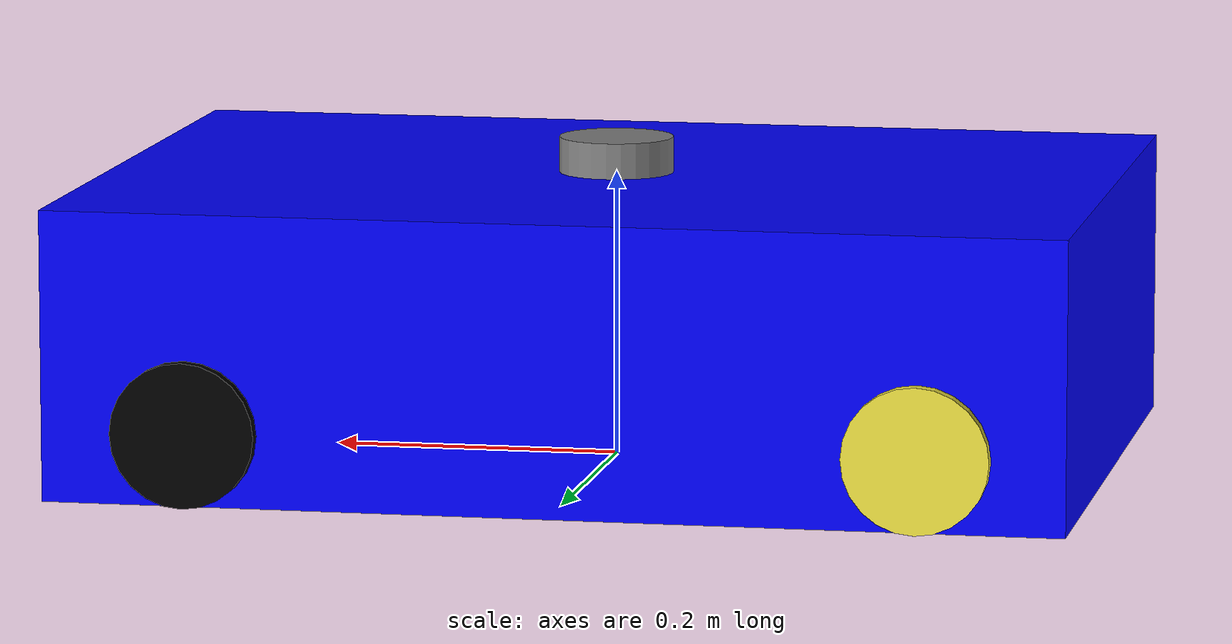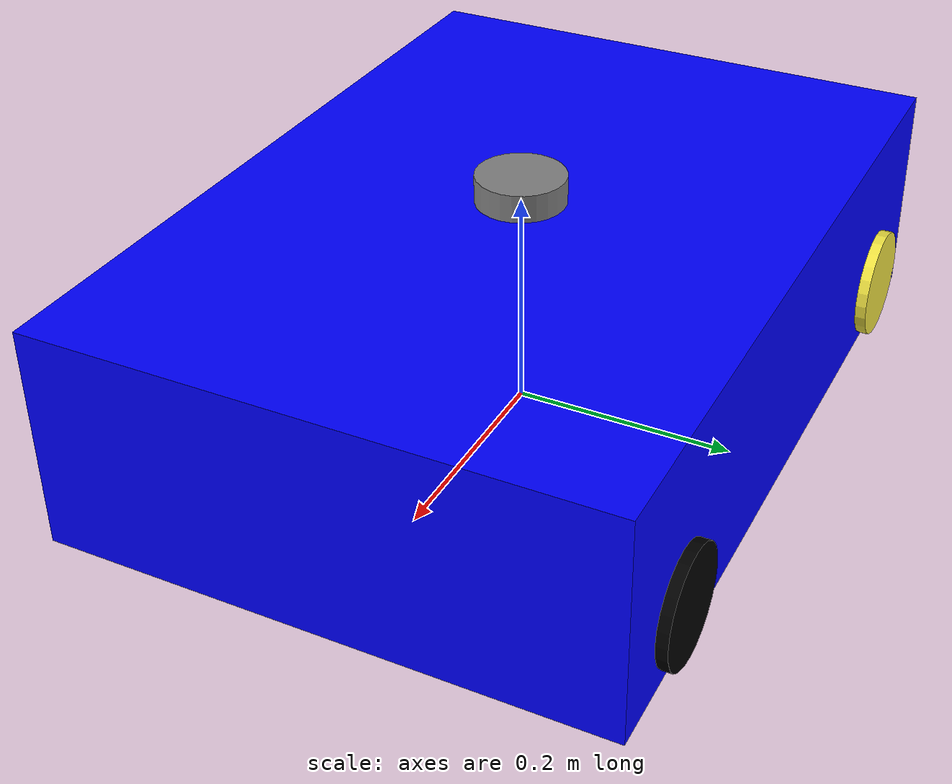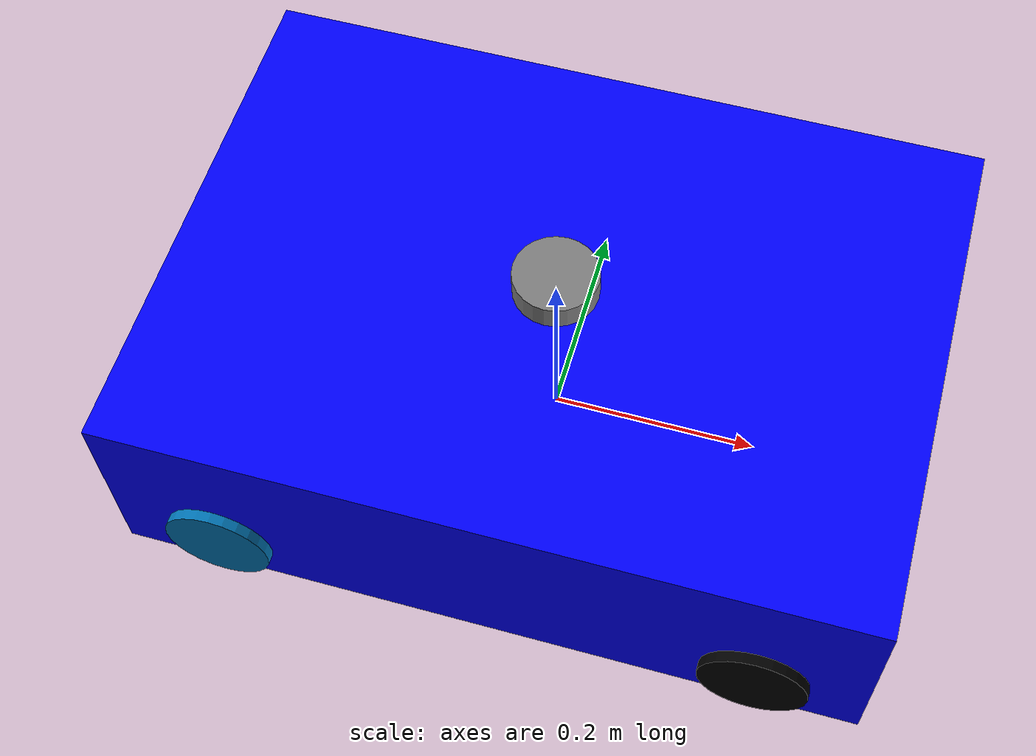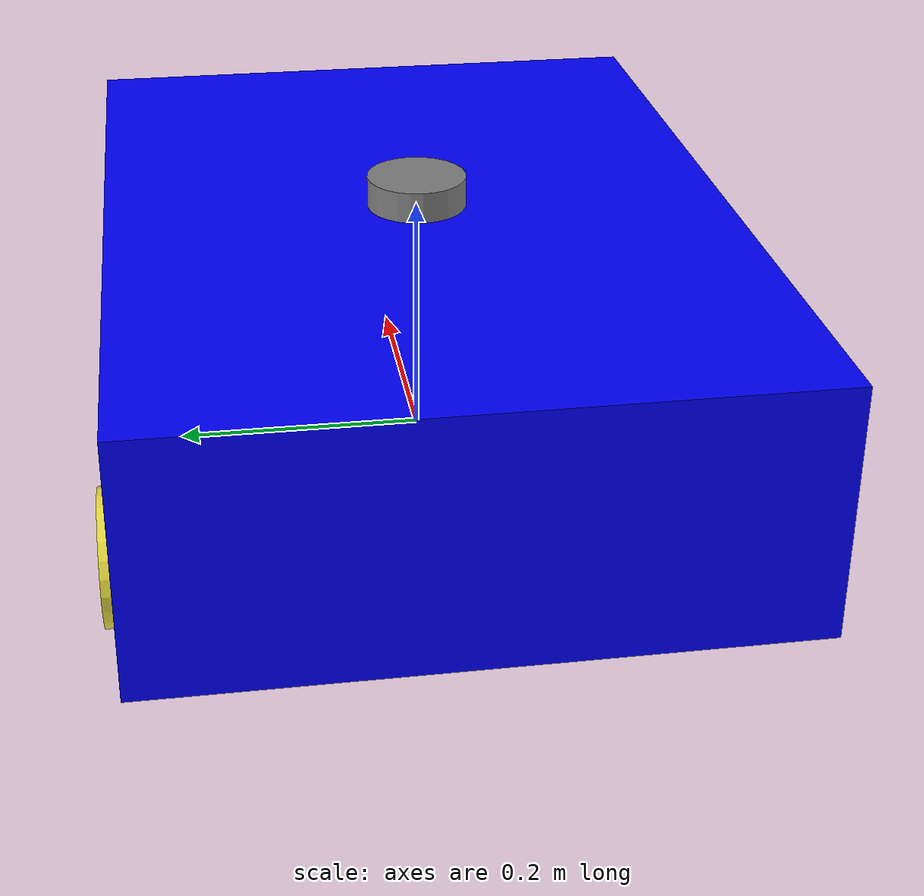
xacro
<?xml version="1.0"?>
<robot name="alina_bot" xmlns:xacro="http://www.ros.org/wiki/xacro">

  <!-- Base Link -->
  <link name="base_link">
    <visual>
      <geometry>
        <box size="0.7 0.5 0.2"/>
      </geometry>
      <origin xyz="0 0 0.1"/>
      <material name="blue">
        <color rgba="0 0 1 1"/>
      </material>
    </visual>
  </link>

  <!-- Wheels (simplified, fixed to base for now) -->
  <link name="left_wheel">
    <visual>
      <geometry>
        <cylinder radius="0.05" length="0.02"/>
      </geometry>
      <origin xyz="0.25 0.25 0.05" rpy="1.5708 0 0"/>
      <material name="black">
        <color rgba="0 0 0 1"/>
      </material>
    </visual>
  </link>

  <link name="right_wheel">
    <visual>
      <geometry>
        <cylinder radius="0.05" length="0.02"/>
      </geometry>
      <origin xyz="0.25 -0.25 0.05" rpy="1.5708 0 0"/>
      <material name="black"/>
    </visual>
  </link>

  <link name="rear_left_wheel">
    <visual>
      <geometry>
        <cylinder radius="0.05" length="0.02"/>
      </geometry>
      <origin xyz="-0.25 0.25 0.05" rpy="1.5708 0 0"/>
    </visual>
  </link>

  <link name="rear_right_wheel">
    <visual>
      <geometry>
        <cylinder radius="0.05" length="0.02"/>
      </geometry>
      <origin xyz="-0.25 -0.25 0.05" rpy="1.5708 0 0"/>
    </visual>
  </link>

  <!-- Lidar -->
  <link name="lidar_link">
    <visual>
      <geometry>
        <cylinder radius="0.04" length="0.05"/>
      </geometry>
      <origin xyz="0 0 0.2" rpy="0 0 0"/>
      <material name="grey">
        <color rgba="0.5 0.5 0.5 1"/>
      </material>
    </visual>
  </link>

  <!-- IMU -->
  <link name="imu_link">
    <visual>
      <geometry>
        <box size="0.04 0.04 0.02"/>
      </geometry>
      <origin xyz="0 0 0.15"/>
      <material name="red">
        <color rgba="1 0 0 1"/>
      </material>
    </visual>
  </link>

  <!-- Static joints (fixed for now) -->
  <joint name="left_wheel_joint" type="fixed">
    <parent link="base_link"/>
    <child link="left_wheel"/>
  </joint>

  <joint name="right_wheel_joint" type="fixed">
    <parent link="base_link"/>
    <child link="right_wheel"/>
  </joint>

  <joint name="rear_left_wheel_joint" type="fixed">
    <parent link="base_link"/>
    <child link="rear_left_wheel"/>
  </joint>

  <joint name="rear_right_wheel_joint" type="fixed">
    <parent link="base_link"/>
    <child link="rear_right_wheel"/>
  </joint>

  <joint name="lidar_joint" type="fixed">
    <parent link="base_link"/>
    <child link="lidar_link"/>
  </joint>

  <joint name="imu_joint" type="fixed">
    <parent link="base_link"/>
    <child link="imu_link"/>
  </joint>

</robot>
